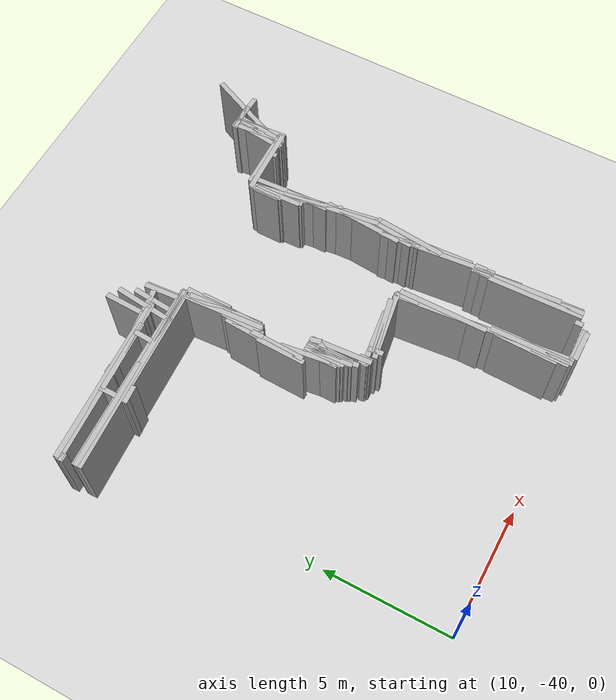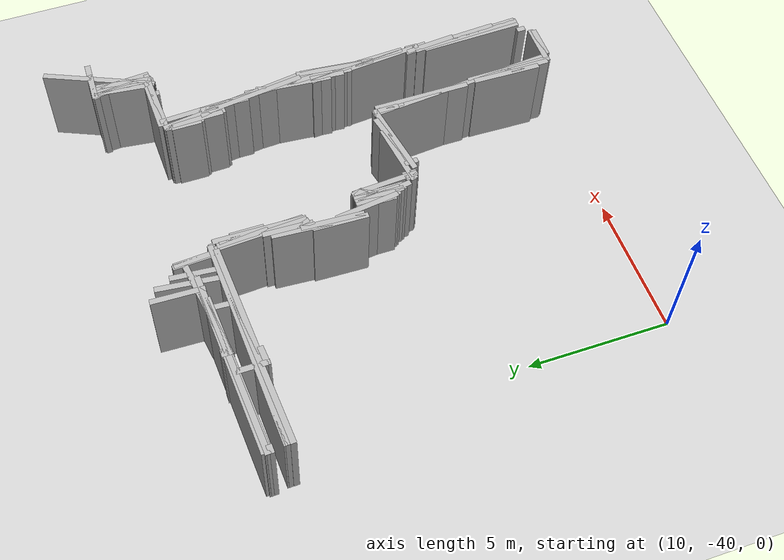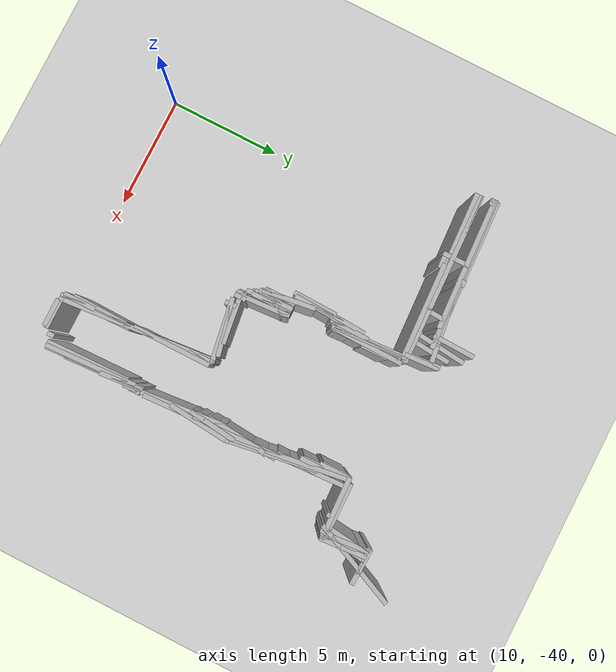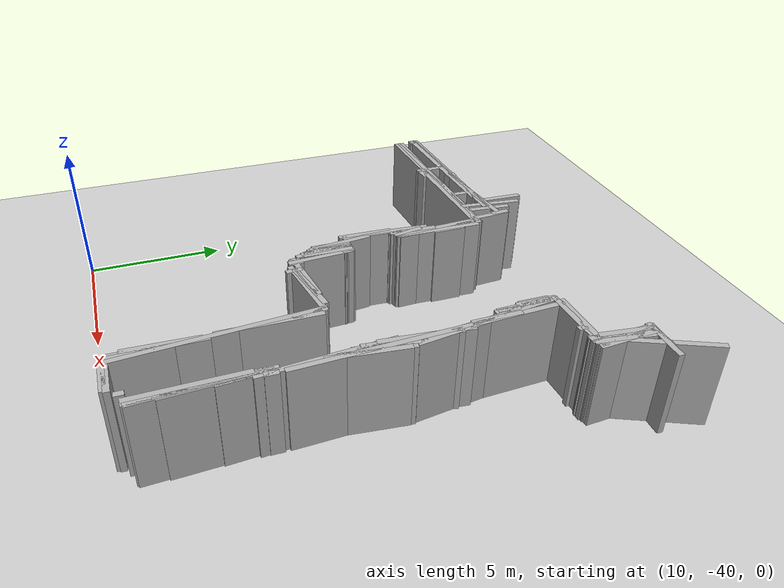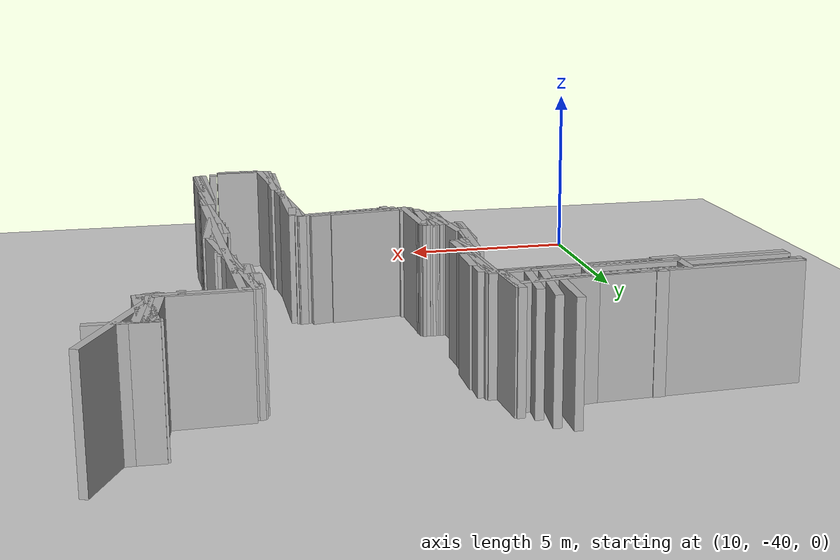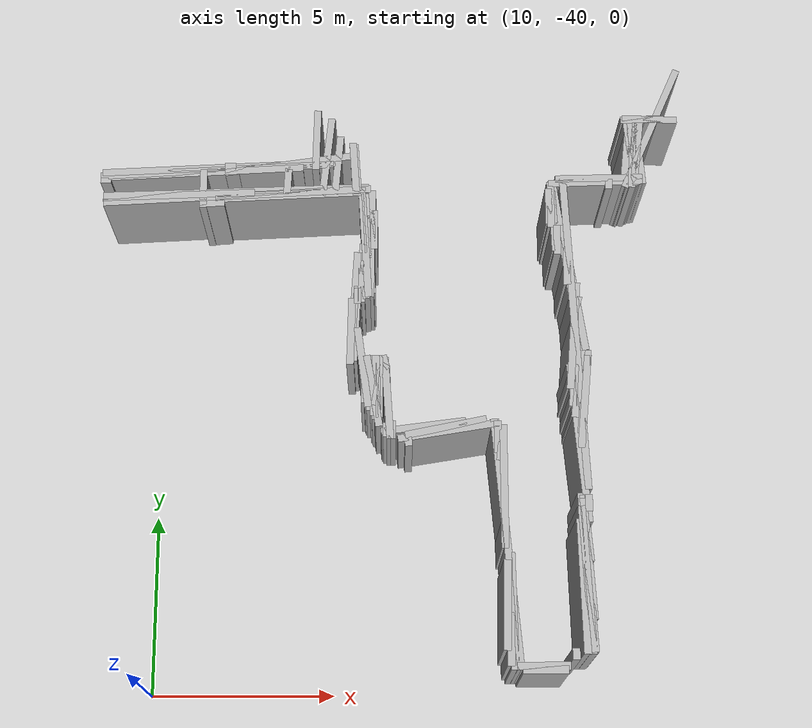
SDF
<sdf version="1.6">
 <world name="aboureyhan">
  <model name="ground_plane">
   <static>true</static>
   <link name="link">
    <collision name="collision">
     <geometry><plane><normal>0 0 1</normal><size>100 100</size></plane></geometry>
    </collision>
    <visual name="visual">
     <geometry><plane><normal>0 0 1</normal><size>500 500</size></plane></geometry>
     <material>
      <ambient>0.8 0.8 0.8 1</ambient>
      <diffuse>0.8 0.8 0.8 1</diffuse>
      <specular>0.8 0.8 0.8 1</specular>
     </material>
    </visual>
   </link>
  </model>
  <model name="wall_14">
   <static>true</static>
   <pose>16.1 -32.0 1.5 0 0 -1.515297821549179</pose>
   <link name="link">
    <collision name="collision"><geometry><box><size>1.802775637731999 0.2 3.0</size></box></geometry></collision>
    <visual name="visual">
     <geometry><box><size>1.802775637731999 0.2 3.0</size></box></geometry>
     <material><ambient>0.5 0.5 0.5 1</ambient><diffuse>0.7 0.7 0.7 1</diffuse></material>
    </visual>
   </link>
  </model>
  <model name="wall_17">
   <static>true</static>
   <pose>21.625 -30.375 1.5 0 0 -1.5205593019355559</pose>
   <link name="link">
    <collision name="collision"><geometry><box><size>8.961305708433342 0.2 3.0</size></box></geometry></collision>
    <visual name="visual">
     <geometry><box><size>8.961305708433342 0.2 3.0</size></box></geometry>
     <material><ambient>0.5 0.5 0.5 1</ambient><diffuse>0.7 0.7 0.7 1</diffuse></material>
    </visual>
   </link>
  </model>
  <model name="wall_21">
   <static>true</static>
   <pose>15.850000000000001 -27.775000000000002 1.5 0 0 -1.5093353709121298</pose>
   <link name="link">
    <collision name="collision">
     <geometry><box><size>3.2561480310329873 0.2 3.0</size></box></geometry>
    </collision>
    <visual name="visual">
     <geometry><box><size>3.2561480310329873 0.2 3.0</size></box></geometry>
     <material><ambient>0.5 0.5 0.5 1</ambient><diffuse>0.7 0.7 0.7 1</diffuse></material>
    </visual>
   </link>
  </model>
  <model name="wall_24">
   <static>true</static>
   <pose>21.700000000000003 -32.45 1.5 0 0 -1.5707963267948966</pose>
   <link name="link">
    <collision name="collision"><geometry><box><size>0.5 0.2 3.0</size></box></geometry></collision>
    <visual name="visual">
     <geometry><box><size>0.5 0.2 3.0</size></box></geometry>
     <material><ambient>0.5 0.5 0.5 1</ambient><diffuse>0.7 0.7 0.7 1</diffuse></material>
    </visual>
   </link>
  </model>
  <model name="wall_32">
   <static>true</static>
   <pose>12.225000000000001 -26.275000000000002 1.5 0 0 0.03354445956167839</pose>
   <link name="link">
    <collision name="collision"><geometry><box><size>7.45419345066923 0.2 3.0</size></box></geometry></collision>
    <visual name="visual">
     <geometry><box><size>7.45419345066923 0.2 3.0</size></box></geometry>
     <material><ambient>0.5 0.5 0.5 1</ambient><diffuse>0.7 0.7 0.7 1</diffuse></material>
    </visual>
   </link>
  </model>
  <model name="wall_50">
   <static>true</static>
   <pose>21.400000000000002 -39.25 1.5 0 0 -1.5707963267948966</pose>
   <link name="link">
    <collision name="collision">
     <geometry><box><size>0.30000000000000426 0.2 3.0</size></box></geometry>
    </collision>
    <visual name="visual">
     <geometry><box><size>0.30000000000000426 0.2 3.0</size></box></geometry>
     <material><ambient>0.5 0.5 0.5 1</ambient><diffuse>0.7 0.7 0.7 1</diffuse></material>
    </visual>
   </link>
  </model>
  <model name="wall_54">
   <static>true</static>
   <pose>21.0 -26.725 1.5 0 0 -1.5707963267948966</pose>
   <link name="link">
    <collision name="collision">
     <geometry><box><size>1.0499999999999972 0.2 3.0</size></box></geometry>
    </collision>
    <visual name="visual">
     <geometry><box><size>1.0499999999999972 0.2 3.0</size></box></geometry>
     <material><ambient>0.5 0.5 0.5 1</ambient><diffuse>0.7 0.7 0.7 1</diffuse></material>
    </visual>
   </link>
  </model>
  <model name="wall_58">
   <static>true</static>
   <pose>15.975000000000001 -27.875000000000004 1.5 0 0 -1.5182132651839555</pose>
   <link name="link">
    <collision name="collision">
     <geometry><box><size>2.8539446385660683 0.2 3.0</size></box></geometry>
    </collision>
    <visual name="visual">
     <geometry><box><size>2.8539446385660683 0.2 3.0</size></box></geometry>
     <material><ambient>0.5 0.5 0.5 1</ambient><diffuse>0.7 0.7 0.7 1</diffuse></material>
    </visual>
   </link>
  </model>
  <model name="wall_78">
   <static>true</static>
   <pose>21.75 -37.275000000000006 1.5 0 0 -1.520206618025512</pose>
   <link name="link">
    <collision name="collision"><geometry><box><size>3.955060050113015 0.2 3.0</size></box></geometry></collision>
    <visual name="visual">
     <geometry><box><size>3.955060050113015 0.2 3.0</size></box></geometry>
     <material><ambient>0.5 0.5 0.5 1</ambient><diffuse>0.7 0.7 0.7 1</diffuse></material>
    </visual>
   </link>
  </model>
  <model name="wall_84">
   <static>true</static>
   <pose>19.650000000000002 -36.275000000000006 1.5 0 0 -1.4821404449274589</pose>
   <link name="link">
    <collision name="collision"><geometry><box><size>6.776614198845911 0.2 3.0</size></box></geometry></collision>
    <visual name="visual">
     <geometry><box><size>6.776614198845911 0.2 3.0</size></box></geometry>
     <material><ambient>0.5 0.5 0.5 1</ambient><diffuse>0.7 0.7 0.7 1</diffuse></material>
    </visual>
   </link>
  </model>
  <model name="wall_100">
   <static>true</static>
   <pose>12.25 -26.400000000000002 1.5 0 0 0.053282851559692174</pose>
   <link name="link">
    <collision name="collision"><geometry><box><size>7.51065909225016 0.2 3.0</size></box></geometry></collision>
    <visual name="visual">
     <geometry><box><size>7.51065909225016 0.2 3.0</size></box></geometry>
     <material><ambient>0.5 0.5 0.5 1</ambient><diffuse>0.7 0.7 0.7 1</diffuse></material>
    </visual>
   </link>
  </model>
  <model name="wall_115">
   <static>true</static>
   <pose>21.650000000000002 -37.45 1.5 0 0 -1.5430256902014752</pose>
   <link name="link">
    <collision name="collision">
     <geometry><box><size>3.6013886210738155 0.2 3.0</size></box></geometry>
    </collision>
    <visual name="visual">
     <geometry><box><size>3.6013886210738155 0.2 3.0</size></box></geometry>
     <material><ambient>0.5 0.5 0.5 1</ambient><diffuse>0.7 0.7 0.7 1</diffuse></material>
    </visual>
   </link>
  </model>
  <model name="wall_116">
   <static>true</static>
   <pose>11.725000000000001 -25.550000000000004 1.5 0 0 0.045769539795550325</pose>
   <link name="link">
    <collision name="collision"><geometry><box><size>6.556866629724902 0.2 3.0</size></box></geometry></collision>
    <visual name="visual">
     <geometry><box><size>6.556866629724902 0.2 3.0</size></box></geometry>
     <material><ambient>0.5 0.5 0.5 1</ambient><diffuse>0.7 0.7 0.7 1</diffuse></material>
    </visual>
   </link>
  </model>
  <model name="wall_149">
   <static>true</static>
   <pose>19.700000000000003 -38.85000000000001 1.5 0 0 1.5707963267948966</pose>
   <link name="link">
    <collision name="collision">
     <geometry><box><size>1.3999999999999986 0.2 3.0</size></box></geometry>
    </collision>
    <visual name="visual">
     <geometry><box><size>1.3999999999999986 0.2 3.0</size></box></geometry>
     <material><ambient>0.5 0.5 0.5 1</ambient><diffuse>0.7 0.7 0.7 1</diffuse></material>
    </visual>
   </link>
  </model>
  <model name="wall_150">
   <static>true</static>
   <pose>21.775000000000002 -37.075 1.5 0 0 -1.512040504079174</pose>
   <link name="link">
    <collision name="collision"><geometry><box><size>4.257346591481601 0.2 3.0</size></box></geometry></collision>
    <visual name="visual">
     <geometry><box><size>4.257346591481601 0.2 3.0</size></box></geometry>
     <material><ambient>0.5 0.5 0.5 1</ambient><diffuse>0.7 0.7 0.7 1</diffuse></material>
    </visual>
   </link>
  </model>
  <model name="wall_156">
   <static>true</static>
   <pose>23.575000000000003 -25.050000000000004 1.5 0 0 -1.4959364790841287</pose>
   <link name="link">
    <collision name="collision">
     <geometry><box><size>2.0056171120131583 0.2 3.0</size></box></geometry>
    </collision>
    <visual name="visual">
     <geometry><box><size>2.0056171120131583 0.2 3.0</size></box></geometry>
     <material><ambient>0.5 0.5 0.5 1</ambient><diffuse>0.7 0.7 0.7 1</diffuse></material>
    </visual>
   </link>
  </model>
  <model name="wall_159">
   <static>true</static>
   <pose>16.025 -27.825000000000003 1.5 0 0 1.5549246438031064</pose>
   <link name="link">
    <collision name="collision">
     <geometry><box><size>3.1503968004046747 0.2 3.0</size></box></geometry>
    </collision>
    <visual name="visual">
     <geometry><box><size>3.1503968004046747 0.2 3.0</size></box></geometry>
     <material><ambient>0.5 0.5 0.5 1</ambient><diffuse>0.7 0.7 0.7 1</diffuse></material>
    </visual>
   </link>
  </model>
  <model name="wall_166">
   <static>true</static>
   <pose>22.700000000000003 -26.050000000000004 1.5 0 0 -1.5707963267948966</pose>
   <link name="link">
    <collision name="collision">
     <geometry><box><size>0.3000000000000007 0.2 3.0</size></box></geometry>
    </collision>
    <visual name="visual">
     <geometry><box><size>0.3000000000000007 0.2 3.0</size></box></geometry>
     <material><ambient>0.5 0.5 0.5 1</ambient><diffuse>0.7 0.7 0.7 1</diffuse></material>
    </visual>
   </link>
  </model>
  <model name="wall_175">
   <static>true</static>
   <pose>21.650000000000002 -33.55 1.5 0 0 -1.4801364395941519</pose>
   <link name="link">
    <collision name="collision"><geometry><box><size>4.418144406874903 0.2 3.0</size></box></geometry></collision>
    <visual name="visual">
     <geometry><box><size>4.418144406874903 0.2 3.0</size></box></geometry>
     <material><ambient>0.5 0.5 0.5 1</ambient><diffuse>0.7 0.7 0.7 1</diffuse></material>
    </visual>
   </link>
  </model>
  <model name="wall_176">
   <static>true</static>
   <pose>16.475 -32.300000000000004 1.5 0 0 -1.5056711634605113</pose>
   <link name="link">
    <collision name="collision">
     <geometry><box><size>2.3048861143232227 0.2 3.0</size></box></geometry>
    </collision>
    <visual name="visual">
     <geometry><box><size>2.3048861143232227 0.2 3.0</size></box></geometry>
     <material><ambient>0.5 0.5 0.5 1</ambient><diffuse>0.7 0.7 0.7 1</diffuse></material>
    </visual>
   </link>
  </model>
  <model name="wall_228">
   <static>true</static>
   <pose>15.475000000000001 -30.400000000000002 1.5 0 0 1.5444866095419758</pose>
   <link name="link">
    <collision name="collision">
     <geometry><box><size>1.9006577808748197 0.2 3.0</size></box></geometry>
    </collision>
    <visual name="visual">
     <geometry><box><size>1.9006577808748197 0.2 3.0</size></box></geometry>
     <material><ambient>0.5 0.5 0.5 1</ambient><diffuse>0.7 0.7 0.7 1</diffuse></material>
    </visual>
   </link>
  </model>
  <model name="wall_278">
   <static>true</static>
   <pose>15.575000000000001 -29.325000000000003 1.5 0 0 1.5096481641455946</pose>
   <link name="link">
    <collision name="collision">
     <geometry><box><size>2.4545875417267182 0.2 3.0</size></box></geometry>
    </collision>
    <visual name="visual">
     <geometry><box><size>2.4545875417267182 0.2 3.0</size></box></geometry>
     <material><ambient>0.5 0.5 0.5 1</ambient><diffuse>0.7 0.7 0.7 1</diffuse></material>
    </visual>
   </link>
  </model>
  <model name="wall_297">
   <static>true</static>
   <pose>11.675 -25.625000000000004 1.5 0 0 0.053384343490735536</pose>
   <link name="link">
    <collision name="collision"><geometry><box><size>6.559344479443052 0.2 3.0</size></box></geometry></collision>
    <visual name="visual">
     <geometry><box><size>6.559344479443052 0.2 3.0</size></box></geometry>
     <material><ambient>0.5 0.5 0.5 1</ambient><diffuse>0.7 0.7 0.7 1</diffuse></material>
    </visual>
   </link>
  </model>
  <model name="wall_352">
   <static>true</static>
   <pose>15.800000000000002 -31.425000000000004 1.5 0 0 -1.4382447944982222</pose>
   <link name="link">
    <collision name="collision">
     <geometry><box><size>2.2699118925632336 0.2 3.0</size></box></geometry>
    </collision>
    <visual name="visual">
     <geometry><box><size>2.2699118925632336 0.2 3.0</size></box></geometry>
     <material><ambient>0.5 0.5 0.5 1</ambient><diffuse>0.7 0.7 0.7 1</diffuse></material>
    </visual>
   </link>
  </model>
  <model name="wall_365">
   <static>true</static>
   <pose>18.050000000000004 -33.125 1.5 0 0 0.20176234432028528</pose>
   <link name="link">
    <collision name="collision">
     <geometry><box><size>2.2455511572885607 0.2 3.0</size></box></geometry>
    </collision>
    <visual name="visual">
     <geometry><box><size>2.2455511572885607 0.2 3.0</size></box></geometry>
     <material><ambient>0.5 0.5 0.5 1</ambient><diffuse>0.7 0.7 0.7 1</diffuse></material>
    </visual>
   </link>
  </model>
  <model name="wall_372">
   <static>true</static>
   <pose>11.3 -26.175 1.5 0 0 -1.5707963267948966</pose>
   <link name="link">
    <collision name="collision">
     <geometry><box><size>1.1499999999999986 0.2 3.0</size></box></geometry>
    </collision>
    <visual name="visual">
     <geometry><box><size>1.1499999999999986 0.2 3.0</size></box></geometry>
     <material><ambient>0.5 0.5 0.5 1</ambient><diffuse>0.7 0.7 0.7 1</diffuse></material>
    </visual>
   </link>
  </model>
  <model name="wall_375">
   <static>true</static>
   <pose>21.85 -35.225 1.5 0 0 -1.5707963267948966</pose>
   <link name="link">
    <collision name="collision">
     <geometry><box><size>0.45000000000000284 0.2 3.0</size></box></geometry>
    </collision>
    <visual name="visual">
     <geometry><box><size>0.45000000000000284 0.2 3.0</size></box></geometry>
     <material><ambient>0.5 0.5 0.5 1</ambient><diffuse>0.7 0.7 0.7 1</diffuse></material>
    </visual>
   </link>
  </model>
  <model name="wall_380">
   <static>true</static>
   <pose>23.950000000000003 -24.35 1.5 0 0 1.152571997215668</pose>
   <link name="link">
    <collision name="collision">
     <geometry><box><size>3.9395431207184424 0.2 3.0</size></box></geometry>
    </collision>
    <visual name="visual">
     <geometry><box><size>3.9395431207184424 0.2 3.0</size></box></geometry>
     <material><ambient>0.5 0.5 0.5 1</ambient><diffuse>0.7 0.7 0.7 1</diffuse></material>
    </visual>
   </link>
  </model>
  <model name="wall_388">
   <static>true</static>
   <pose>15.55 -25.575000000000003 1.5 0 0 -1.506369487369342</pose>
   <link name="link">
    <collision name="collision">
     <geometry><box><size>1.5532224567009039 0.2 3.0</size></box></geometry>
    </collision>
    <visual name="visual">
     <geometry><box><size>1.5532224567009039 0.2 3.0</size></box></geometry>
     <material><ambient>0.5 0.5 0.5 1</ambient><diffuse>0.7 0.7 0.7 1</diffuse></material>
    </visual>
   </link>
  </model>
  <model name="wall_399">
   <static>true</static>
   <pose>15.900000000000002 -27.225 1.5 0 0 -1.5137155443886312</pose>
   <link name="link">
    <collision name="collision">
     <geometry><box><size>1.7528548142958105 0.2 3.0</size></box></geometry>
    </collision>
    <visual name="visual">
     <geometry><box><size>1.7528548142958105 0.2 3.0</size></box></geometry>
     <material><ambient>0.5 0.5 0.5 1</ambient><diffuse>0.7 0.7 0.7 1</diffuse></material>
    </visual>
   </link>
  </model>
  <model name="wall_420">
   <static>true</static>
   <pose>14.475000000000001 -24.700000000000003 1.5 0 0 1.5430256902014772</pose>
   <link name="link">
    <collision name="collision">
     <geometry><box><size>1.8006943105369075 0.2 3.0</size></box></geometry>
    </collision>
    <visual name="visual">
     <geometry><box><size>1.8006943105369075 0.2 3.0</size></box></geometry>
     <material><ambient>0.5 0.5 0.5 1</ambient><diffuse>0.7 0.7 0.7 1</diffuse></material>
    </visual>
   </link>
  </model>
  <model name="wall_427">
   <static>true</static>
   <pose>8.55 -25.900000000000002 1.5 0 0 0.0</pose>
   <link name="link">
    <collision name="collision">
     <geometry><box><size>0.29999999999999893 0.2 3.0</size></box></geometry>
    </collision>
    <visual name="visual">
     <geometry><box><size>0.29999999999999893 0.2 3.0</size></box></geometry>
     <material><ambient>0.5 0.5 0.5 1</ambient><diffuse>0.7 0.7 0.7 1</diffuse></material>
    </visual>
   </link>
  </model>
  <model name="wall_429">
   <static>true</static>
   <pose>18.125 -33.225 1.5 0 0 0.16219883346338337</pose>
   <link name="link">
    <collision name="collision"><geometry><box><size>2.786574958618555 0.2 3.0</size></box></geometry></collision>
    <visual name="visual">
     <geometry><box><size>2.786574958618555 0.2 3.0</size></box></geometry>
     <material><ambient>0.5 0.5 0.5 1</ambient><diffuse>0.7 0.7 0.7 1</diffuse></material>
    </visual>
   </link>
  </model>
  <model name="wall_430">
   <static>true</static>
   <pose>21.450000000000003 -28.500000000000004 1.5 0 0 -1.4343937223939494</pose>
   <link name="link">
    <collision name="collision"><geometry><box><size>5.147815070493501 0.2 3.0</size></box></geometry></collision>
    <visual name="visual">
     <geometry><box><size>5.147815070493501 0.2 3.0</size></box></geometry>
     <material><ambient>0.5 0.5 0.5 1</ambient><diffuse>0.7 0.7 0.7 1</diffuse></material>
    </visual>
   </link>
  </model>
  <model name="wall_431">
   <static>true</static>
   <pose>23.400000000000002 -25.1 1.5 0 0 1.5232132235179126</pose>
   <link name="link">
    <collision name="collision"><geometry><box><size>2.102379604162862 0.2 3.0</size></box></geometry></collision>
    <visual name="visual">
     <geometry><box><size>2.102379604162862 0.2 3.0</size></box></geometry>
     <material><ambient>0.5 0.5 0.5 1</ambient><diffuse>0.7 0.7 0.7 1</diffuse></material>
    </visual>
   </link>
  </model>
  <model name="wall_437">
   <static>true</static>
   <pose>21.05 -26.675 1.5 0 0 1.5707963267948966</pose>
   <link name="link">
    <collision name="collision">
     <geometry><box><size>1.3500000000000014 0.2 3.0</size></box></geometry>
    </collision>
    <visual name="visual">
     <geometry><box><size>1.3500000000000014 0.2 3.0</size></box></geometry>
     <material><ambient>0.5 0.5 0.5 1</ambient><diffuse>0.7 0.7 0.7 1</diffuse></material>
    </visual>
   </link>
  </model>
  <model name="wall_447">
   <static>true</static>
   <pose>16.150000000000002 -31.875000000000004 1.5 0 0 1.0516502125483744</pose>
   <link name="link">
    <collision name="collision">
     <geometry><box><size>1.2093386622447868 0.2 3.0</size></box></geometry>
    </collision>
    <visual name="visual">
     <geometry><box><size>1.2093386622447868 0.2 3.0</size></box></geometry>
     <material><ambient>0.5 0.5 0.5 1</ambient><diffuse>0.7 0.7 0.7 1</diffuse></material>
    </visual>
   </link>
  </model>
  <model name="wall_450">
   <static>true</static>
   <pose>19.775 -38.10000000000001 1.5 0 0 -1.55466869295126</pose>
   <link name="link">
    <collision name="collision"><geometry><box><size>3.1004031995855 0.2 3.0</size></box></geometry></collision>
    <visual name="visual">
     <geometry><box><size>3.1004031995855 0.2 3.0</size></box></geometry>
     <material><ambient>0.5 0.5 0.5 1</ambient><diffuse>0.7 0.7 0.7 1</diffuse></material>
    </visual>
   </link>
  </model>
  <model name="wall_456">
   <static>true</static>
   <pose>21.825000000000003 -32.400000000000006 1.5 0 0 1.4749371796848836</pose>
   <link name="link">
    <collision name="collision">
     <geometry><box><size>2.6119915773217968 0.2 3.0</size></box></geometry>
    </collision>
    <visual name="visual">
     <geometry><box><size>2.6119915773217968 0.2 3.0</size></box></geometry>
     <material><ambient>0.5 0.5 0.5 1</ambient><diffuse>0.7 0.7 0.7 1</diffuse></material>
    </visual>
   </link>
  </model>
  <model name="wall_466">
   <static>true</static>
   <pose>12.050000000000002 -25.5 1.5 0 0 0.0</pose>
   <link name="link">
    <collision name="collision">
     <geometry><box><size>0.3000000000000007 0.2 3.0</size></box></geometry>
    </collision>
    <visual name="visual">
     <geometry><box><size>0.3000000000000007 0.2 3.0</size></box></geometry>
     <material><ambient>0.5 0.5 0.5 1</ambient><diffuse>0.7 0.7 0.7 1</diffuse></material>
    </visual>
   </link>
  </model>
  <model name="wall_476">
   <static>true</static>
   <pose>21.825000000000003 -32.125 1.5 0 0 1.4648119688052967</pose>
   <link name="link">
    <collision name="collision">
     <geometry><box><size>2.3632604596192963 0.2 3.0</size></box></geometry>
    </collision>
    <visual name="visual">
     <geometry><box><size>2.3632604596192963 0.2 3.0</size></box></geometry>
     <material><ambient>0.5 0.5 0.5 1</ambient><diffuse>0.7 0.7 0.7 1</diffuse></material>
    </visual>
   </link>
  </model>
  <model name="wall_484">
   <static>true</static>
   <pose>22.425000000000004 -25.875 1.5 0 0 0.02040533068653838</pose>
   <link name="link">
    <collision name="collision">
     <geometry><box><size>2.4505101509685687 0.2 3.0</size></box></geometry>
    </collision>
    <visual name="visual">
     <geometry><box><size>2.4505101509685687 0.2 3.0</size></box></geometry>
     <material><ambient>0.5 0.5 0.5 1</ambient><diffuse>0.7 0.7 0.7 1</diffuse></material>
    </visual>
   </link>
  </model>
  <model name="wall_486">
   <static>true</static>
   <pose>11.25 -25.700000000000003 1.5 0 0 0.05258306161094121</pose>
   <link name="link">
    <collision name="collision"><geometry><box><size>5.707889277132135 0.2 3.0</size></box></geometry></collision>
    <visual name="visual">
     <geometry><box><size>5.707889277132135 0.2 3.0</size></box></geometry>
     <material><ambient>0.5 0.5 0.5 1</ambient><diffuse>0.7 0.7 0.7 1</diffuse></material>
    </visual>
   </link>
  </model>
  <model name="wall_488">
   <static>true</static>
   <pose>15.600000000000001 -30.175 1.5 0 0 1.524318195443893</pose>
   <link name="link">
    <collision name="collision">
     <geometry><box><size>2.1523243250030872 0.2 3.0</size></box></geometry>
    </collision>
    <visual name="visual">
     <geometry><box><size>2.1523243250030872 0.2 3.0</size></box></geometry>
     <material><ambient>0.5 0.5 0.5 1</ambient><diffuse>0.7 0.7 0.7 1</diffuse></material>
    </visual>
   </link>
  </model>
  <model name="wall_489">
   <static>true</static>
   <pose>15.075000000000001 -25.475 1.5 0 0 1.4852910331166909</pose>
   <link name="link">
    <collision name="collision"><geometry><box><size>1.75641680702503 0.2 3.0</size></box></geometry></collision>
    <visual name="visual">
     <geometry><box><size>1.75641680702503 0.2 3.0</size></box></geometry>
     <material><ambient>0.5 0.5 0.5 1</ambient><diffuse>0.7 0.7 0.7 1</diffuse></material>
    </visual>
   </link>
  </model>
  <model name="wall_490">
   <static>true</static>
   <pose>15.850000000000001 -31.775000000000002 1.5 0 0 -1.5707963267948966</pose>
   <link name="link">
    <collision name="collision">
     <geometry><box><size>1.3500000000000014 0.2 3.0</size></box></geometry>
    </collision>
    <visual name="visual">
     <geometry><box><size>1.3500000000000014 0.2 3.0</size></box></geometry>
     <material><ambient>0.5 0.5 0.5 1</ambient><diffuse>0.7 0.7 0.7 1</diffuse></material>
    </visual>
   </link>
  </model>
  <model name="wall_508">
   <static>true</static>
   <pose>22.325000000000003 -26.000000000000004 1.5 0 0 0.03771795246686472</pose>
   <link name="link">
    <collision name="collision"><geometry><box><size>2.651886121235226 0.2 3.0</size></box></geometry></collision>
    <visual name="visual">
     <geometry><box><size>2.651886121235226 0.2 3.0</size></box></geometry>
     <material><ambient>0.5 0.5 0.5 1</ambient><diffuse>0.7 0.7 0.7 1</diffuse></material>
    </visual>
   </link>
  </model>
  <model name="wall_533">
   <static>true</static>
   <pose>15.775 -28.700000000000003 1.5 0 0 1.5413930385908912</pose>
   <link name="link">
    <collision name="collision">
     <geometry><box><size>1.7007351351694977 0.2 3.0</size></box></geometry>
    </collision>
    <visual name="visual">
     <geometry><box><size>1.7007351351694977 0.2 3.0</size></box></geometry>
     <material><ambient>0.5 0.5 0.5 1</ambient><diffuse>0.7 0.7 0.7 1</diffuse></material>
    </visual>
   </link>
  </model>
  <model name="wall_536">
   <static>true</static>
   <pose>19.450000000000003 -33.400000000000006 1.5 0 0 1.5707963267948966</pose>
   <link name="link">
    <collision name="collision">
     <geometry><box><size>0.8999999999999986 0.2 3.0</size></box></geometry>
    </collision>
    <visual name="visual">
     <geometry><box><size>0.8999999999999986 0.2 3.0</size></box></geometry>
     <material><ambient>0.5 0.5 0.5 1</ambient><diffuse>0.7 0.7 0.7 1</diffuse></material>
    </visual>
   </link>
  </model>
  <model name="wall_538">
   <static>true</static>
   <pose>19.625 -37.95 1.5 0 0 1.5499660067586793</pose>
   <link name="link">
    <collision name="collision">
     <geometry><box><size>2.4005207768315664 0.2 3.0</size></box></geometry>
    </collision>
    <visual name="visual">
     <geometry><box><size>2.4005207768315664 0.2 3.0</size></box></geometry>
     <material><ambient>0.5 0.5 0.5 1</ambient><diffuse>0.7 0.7 0.7 1</diffuse></material>
    </visual>
   </link>
  </model>
  <model name="wall_541">
   <static>true</static>
   <pose>21.625 -29.125000000000004 1.5 0 0 -1.4212365869211931</pose>
   <link name="link">
    <collision name="collision">
     <geometry><box><size>3.6912057650583487 0.2 3.0</size></box></geometry>
    </collision>
    <visual name="visual">
     <geometry><box><size>3.6912057650583487 0.2 3.0</size></box></geometry>
     <material><ambient>0.5 0.5 0.5 1</ambient><diffuse>0.7 0.7 0.7 1</diffuse></material>
    </visual>
   </link>
  </model>
  <model name="wall_556">
   <static>true</static>
   <pose>23.525000000000002 -25.075000000000003 1.5 0 0 1.4494443262241328</pose>
   <link name="link">
    <collision name="collision">
     <geometry><box><size>2.0651876428063356 0.2 3.0</size></box></geometry>
    </collision>
    <visual name="visual">
     <geometry><box><size>2.0651876428063356 0.2 3.0</size></box></geometry>
     <material><ambient>0.5 0.5 0.5 1</ambient><diffuse>0.7 0.7 0.7 1</diffuse></material>
    </visual>
   </link>
  </model>
  <model name="wall_568">
   <static>true</static>
   <pose>15.600000000000001 -25.575000000000003 1.5 0 0 -1.501939837493851</pose>
   <link name="link">
    <collision name="collision"><geometry><box><size>1.453444185374866 0.2 3.0</size></box></geometry></collision>
    <visual name="visual">
     <geometry><box><size>1.453444185374866 0.2 3.0</size></box></geometry>
     <material><ambient>0.5 0.5 0.5 1</ambient><diffuse>0.7 0.7 0.7 1</diffuse></material>
    </visual>
   </link>
  </model>
  <model name="wall_579">
   <static>true</static>
   <pose>21.775000000000002 -35.900000000000006 1.5 0 0 -1.4876550949064564</pose>
   <link name="link">
    <collision name="collision">
     <geometry><box><size>1.8062391868188483 0.2 3.0</size></box></geometry>
    </collision>
    <visual name="visual">
     <geometry><box><size>1.8062391868188483 0.2 3.0</size></box></geometry>
     <material><ambient>0.5 0.5 0.5 1</ambient><diffuse>0.7 0.7 0.7 1</diffuse></material>
    </visual>
   </link>
  </model>
  <model name="wall_588">
   <static>true</static>
   <pose>19.55 -33.60000000000001 1.5 0 0 1.4601391056209991</pose>
   <link name="link">
    <collision name="collision">
     <geometry><box><size>0.9055385138137404 0.2 3.0</size></box></geometry>
    </collision>
    <visual name="visual">
     <geometry><box><size>0.9055385138137404 0.2 3.0</size></box></geometry>
     <material><ambient>0.5 0.5 0.5 1</ambient><diffuse>0.7 0.7 0.7 1</diffuse></material>
    </visual>
   </link>
  </model>
  <model name="wall_600">
   <static>true</static>
   <pose>16.075000000000003 -32.1 1.5 0 0 -1.3975506603425327</pose>
   <link name="link">
    <collision name="collision"><geometry><box><size>2.030394050424695 0.2 3.0</size></box></geometry></collision>
    <visual name="visual">
     <geometry><box><size>2.030394050424695 0.2 3.0</size></box></geometry>
     <material><ambient>0.5 0.5 0.5 1</ambient><diffuse>0.7 0.7 0.7 1</diffuse></material>
    </visual>
   </link>
  </model>
  <model name="wall_603">
   <static>true</static>
   <pose>20.6 -39.650000000000006 1.5 0 0 0.0</pose>
   <link name="link">
    <collision name="collision">
     <geometry><box><size>1.2000000000000028 0.2 3.0</size></box></geometry>
    </collision>
    <visual name="visual">
     <geometry><box><size>1.2000000000000028 0.2 3.0</size></box></geometry>
     <material><ambient>0.5 0.5 0.5 1</ambient><diffuse>0.7 0.7 0.7 1</diffuse></material>
    </visual>
   </link>
  </model>
  <model name="wall_606">
   <static>true</static>
   <pose>23.35 -25.075000000000003 1.5 0 0 -1.4735431285433294</pose>
   <link name="link">
    <collision name="collision">
     <geometry><box><size>2.0597329924045953 0.2 3.0</size></box></geometry>
    </collision>
    <visual name="visual">
     <geometry><box><size>2.0597329924045953 0.2 3.0</size></box></geometry>
     <material><ambient>0.5 0.5 0.5 1</ambient><diffuse>0.7 0.7 0.7 1</diffuse></material>
    </visual>
   </link>
  </model>
  <model name="wall_615">
   <static>true</static>
   <pose>16.6 -33.2 1.5 0 0 1.5707963267948966</pose>
   <link name="link">
    <collision name="collision"><geometry><box><size>0.5 0.2 3.0</size></box></geometry></collision>
    <visual name="visual">
     <geometry><box><size>0.5 0.2 3.0</size></box></geometry>
     <material><ambient>0.5 0.5 0.5 1</ambient><diffuse>0.7 0.7 0.7 1</diffuse></material>
    </visual>
   </link>
  </model>
  <model name="wall_635">
   <static>true</static>
   <pose>15.650000000000002 -29.375 1.5 0 0 -1.5707963267948966</pose>
   <link name="link">
    <collision name="collision">
     <geometry><box><size>0.4499999999999993 0.2 3.0</size></box></geometry>
    </collision>
    <visual name="visual">
     <geometry><box><size>0.4499999999999993 0.2 3.0</size></box></geometry>
     <material><ambient>0.5 0.5 0.5 1</ambient><diffuse>0.7 0.7 0.7 1</diffuse></material>
    </visual>
   </link>
  </model>
  <model name="wall_677">
   <static>true</static>
   <pose>21.700000000000003 -29.575000000000003 1.5 0 0 1.2924966677897893</pose>
   <link name="link">
    <collision name="collision">
     <geometry><box><size>0.3640054944640233 0.2 3.0</size></box></geometry>
    </collision>
    <visual name="visual">
     <geometry><box><size>0.3640054944640233 0.2 3.0</size></box></geometry>
     <material><ambient>0.5 0.5 0.5 1</ambient><diffuse>0.7 0.7 0.7 1</diffuse></material>
    </visual>
   </link>
  </model>
  <model name="wall_679">
   <static>true</static>
   <pose>17.025 -33.375 1.5 0 0 -1.480136439594151</pose>
   <link name="link">
    <collision name="collision">
     <geometry><box><size>0.5522680508593674 0.2 3.0</size></box></geometry>
    </collision>
    <visual name="visual">
     <geometry><box><size>0.5522680508593674 0.2 3.0</size></box></geometry>
     <material><ambient>0.5 0.5 0.5 1</ambient><diffuse>0.7 0.7 0.7 1</diffuse></material>
    </visual>
   </link>
  </model>
  <model name="wall_680">
   <static>true</static>
   <pose>21.55 -31.950000000000003 1.5 0 0 1.4876550949064544</pose>
   <link name="link">
    <collision name="collision">
     <geometry><box><size>1.2041594578792325 0.2 3.0</size></box></geometry>
    </collision>
    <visual name="visual">
     <geometry><box><size>1.2041594578792325 0.2 3.0</size></box></geometry>
     <material><ambient>0.5 0.5 0.5 1</ambient><diffuse>0.7 0.7 0.7 1</diffuse></material>
    </visual>
   </link>
  </model>
  <model name="wall_702">
   <static>true</static>
   <pose>21.450000000000003 -28.200000000000003 1.5 0 0 1.5707963267948966</pose>
   <link name="link">
    <collision name="collision">
     <geometry><box><size>1.7000000000000028 0.2 3.0</size></box></geometry>
    </collision>
    <visual name="visual">
     <geometry><box><size>1.7000000000000028 0.2 3.0</size></box></geometry>
     <material><ambient>0.5 0.5 0.5 1</ambient><diffuse>0.7 0.7 0.7 1</diffuse></material>
    </visual>
   </link>
  </model>
  <model name="wall_718">
   <static>true</static>
   <pose>14.775000000000002 -25.225 1.5 0 0 1.4648119688052967</pose>
   <link name="link">
    <collision name="collision">
     <geometry><box><size>2.3632604596192928 0.2 3.0</size></box></geometry>
    </collision>
    <visual name="visual">
     <geometry><box><size>2.3632604596192928 0.2 3.0</size></box></geometry>
     <material><ambient>0.5 0.5 0.5 1</ambient><diffuse>0.7 0.7 0.7 1</diffuse></material>
    </visual>
   </link>
  </model>
  <model name="wall_736">
   <static>true</static>
   <pose>21.675 -31.825000000000003 1.5 0 0 1.4494443262241328</pose>
   <link name="link">
    <collision name="collision">
     <geometry><box><size>2.0651876428063356 0.2 3.0</size></box></geometry>
    </collision>
    <visual name="visual">
     <geometry><box><size>2.0651876428063356 0.2 3.0</size></box></geometry>
     <material><ambient>0.5 0.5 0.5 1</ambient><diffuse>0.7 0.7 0.7 1</diffuse></material>
    </visual>
   </link>
  </model>
  <model name="wall_738">
   <static>true</static>
   <pose>13.675000000000002 -25.450000000000003 1.5 0 0 0.13992467057411773</pose>
   <link name="link">
    <collision name="collision"><geometry><box><size>3.585038354048671 0.2 3.0</size></box></geometry></collision>
    <visual name="visual">
     <geometry><box><size>3.585038354048671 0.2 3.0</size></box></geometry>
     <material><ambient>0.5 0.5 0.5 1</ambient><diffuse>0.7 0.7 0.7 1</diffuse></material>
    </visual>
   </link>
  </model>
  <model name="wall_751">
   <static>true</static>
   <pose>10.625 -26.375000000000004 1.5 0 0 0.03527947359359094</pose>
   <link name="link">
    <collision name="collision"><geometry><box><size>4.252646234992984 0.2 3.0</size></box></geometry></collision>
    <visual name="visual">
     <geometry><box><size>4.252646234992984 0.2 3.0</size></box></geometry>
     <material><ambient>0.5 0.5 0.5 1</ambient><diffuse>0.7 0.7 0.7 1</diffuse></material>
    </visual>
   </link>
  </model>
  <model name="wall_752">
   <static>true</static>
   <pose>20.55 -39.550000000000004 1.5 0 0 0.0</pose>
   <link name="link">
    <collision name="collision">
     <geometry><box><size>1.3999999999999986 0.2 3.0</size></box></geometry>
    </collision>
    <visual name="visual">
     <geometry><box><size>1.3999999999999986 0.2 3.0</size></box></geometry>
     <material><ambient>0.5 0.5 0.5 1</ambient><diffuse>0.7 0.7 0.7 1</diffuse></material>
    </visual>
   </link>
  </model>
  <model name="wall_753">
   <static>true</static>
   <pose>13.675000000000002 -25.925 1.5 0 0 1.5120405040791731</pose>
   <link name="link">
    <collision name="collision">
     <geometry><box><size>0.8514693182963214 0.2 3.0</size></box></geometry>
    </collision>
    <visual name="visual">
     <geometry><box><size>0.8514693182963214 0.2 3.0</size></box></geometry>
     <material><ambient>0.5 0.5 0.5 1</ambient><diffuse>0.7 0.7 0.7 1</diffuse></material>
    </visual>
   </link>
  </model>
  <model name="wall_759">
   <static>true</static>
   <pose>21.800000000000004 -36.725 1.5 0 0 -1.5093353709121309</pose>
   <link name="link">
    <collision name="collision">
     <geometry><box><size>3.2561480310329873 0.2 3.0</size></box></geometry>
    </collision>
    <visual name="visual">
     <geometry><box><size>3.2561480310329873 0.2 3.0</size></box></geometry>
     <material><ambient>0.5 0.5 0.5 1</ambient><diffuse>0.7 0.7 0.7 1</diffuse></material>
    </visual>
   </link>
  </model>
  <model name="wall_772">
   <static>true</static>
   <pose>16.125 -31.8 1.5 0 0 1.4640606541457593</pose>
   <link name="link">
    <collision name="collision">
     <geometry><box><size>1.4080127840328711 0.2 3.0</size></box></geometry>
    </collision>
    <visual name="visual">
     <geometry><box><size>1.4080127840328711 0.2 3.0</size></box></geometry>
     <material><ambient>0.5 0.5 0.5 1</ambient><diffuse>0.7 0.7 0.7 1</diffuse></material>
    </visual>
   </link>
  </model>
  <model name="wall_792">
   <static>true</static>
   <pose>23.225 -25.975 1.5 0 0 -1.4288992721907399</pose>
   <link name="link">
    <collision name="collision">
     <geometry><box><size>0.35355339059327123 0.2 3.0</size></box></geometry>
    </collision>
    <visual name="visual">
     <geometry><box><size>0.35355339059327123 0.2 3.0</size></box></geometry>
     <material><ambient>0.5 0.5 0.5 1</ambient><diffuse>0.7 0.7 0.7 1</diffuse></material>
    </visual>
   </link>
  </model>
  <model name="wall_802">
   <static>true</static>
   <pose>16.450000000000003 -33.2 1.5 0 0 1.5707963267948966</pose>
   <link name="link">
    <collision name="collision">
     <geometry><box><size>0.4000000000000057 0.2 3.0</size></box></geometry>
    </collision>
    <visual name="visual">
     <geometry><box><size>0.4000000000000057 0.2 3.0</size></box></geometry>
     <material><ambient>0.5 0.5 0.5 1</ambient><diffuse>0.7 0.7 0.7 1</diffuse></material>
    </visual>
   </link>
  </model>
  <model name="wall_815">
   <static>true</static>
   <pose>16.25 -31.975 1.5 0 0 -1.5707963267948966</pose>
   <link name="link">
    <collision name="collision"><geometry><box><size>1.75 0.2 3.0</size></box></geometry></collision>
    <visual name="visual">
     <geometry><box><size>1.75 0.2 3.0</size></box></geometry>
     <material><ambient>0.5 0.5 0.5 1</ambient><diffuse>0.7 0.7 0.7 1</diffuse></material>
    </visual>
   </link>
  </model>
  <model name="wall_819">
   <static>true</static>
   <pose>16.175000000000004 -31.900000000000002 1.5 0 0 -1.539556493364628</pose>
   <link name="link">
    <collision name="collision">
     <geometry><box><size>1.6007810593582135 0.2 3.0</size></box></geometry>
    </collision>
    <visual name="visual">
     <geometry><box><size>1.6007810593582135 0.2 3.0</size></box></geometry>
     <material><ambient>0.5 0.5 0.5 1</ambient><diffuse>0.7 0.7 0.7 1</diffuse></material>
    </visual>
   </link>
  </model>
  <model name="wall_824">
   <static>true</static>
   <pose>17.450000000000003 -33.1 1.5 0 0 0.12970253715591085</pose>
   <link name="link">
    <collision name="collision">
     <geometry><box><size>2.3194827009486407 0.2 3.0</size></box></geometry>
    </collision>
    <visual name="visual">
     <geometry><box><size>2.3194827009486407 0.2 3.0</size></box></geometry>
     <material><ambient>0.5 0.5 0.5 1</ambient><diffuse>0.7 0.7 0.7 1</diffuse></material>
    </visual>
   </link>
  </model>
  <model name="wall_838">
   <static>true</static>
   <pose>21.125 -27.150000000000002 1.5 0 0 -1.5430256902014752</pose>
   <link name="link">
    <collision name="collision">
     <geometry><box><size>1.8006943105369149 0.2 3.0</size></box></geometry>
    </collision>
    <visual name="visual">
     <geometry><box><size>1.8006943105369149 0.2 3.0</size></box></geometry>
     <material><ambient>0.5 0.5 0.5 1</ambient><diffuse>0.7 0.7 0.7 1</diffuse></material>
    </visual>
   </link>
  </model>
  <model name="wall_863">
   <static>true</static>
   <pose>21.575000000000003 -30.525000000000002 1.5 0 0 1.4890119461769007</pose>
   <link name="link">
    <collision name="collision">
     <geometry><box><size>3.0602287496198755 0.2 3.0</size></box></geometry>
    </collision>
    <visual name="visual">
     <geometry><box><size>3.0602287496198755 0.2 3.0</size></box></geometry>
     <material><ambient>0.5 0.5 0.5 1</ambient><diffuse>0.7 0.7 0.7 1</diffuse></material>
    </visual>
   </link>
  </model>
  <model name="wall_864">
   <static>true</static>
   <pose>16.0 -31.875000000000004 1.5 0 0 1.5707963267948966</pose>
   <link name="link">
    <collision name="collision">
     <geometry><box><size>1.5500000000000043 0.2 3.0</size></box></geometry>
    </collision>
    <visual name="visual">
     <geometry><box><size>1.5500000000000043 0.2 3.0</size></box></geometry>
     <material><ambient>0.5 0.5 0.5 1</ambient><diffuse>0.7 0.7 0.7 1</diffuse></material>
    </visual>
   </link>
  </model>
  <model name="wall_866">
   <static>true</static>
   <pose>16.1 -31.950000000000003 1.5 0 0 1.5707963267948966</pose>
   <link name="link">
    <collision name="collision">
     <geometry><box><size>1.7000000000000028 0.2 3.0</size></box></geometry>
    </collision>
    <visual name="visual">
     <geometry><box><size>1.7000000000000028 0.2 3.0</size></box></geometry>
     <material><ambient>0.5 0.5 0.5 1</ambient><diffuse>0.7 0.7 0.7 1</diffuse></material>
    </visual>
   </link>
  </model>
  <model name="wall_882">
   <static>true</static>
   <pose>23.925000000000004 -24.075000000000003 1.5 0 0 -0.032246882435252075</pose>
   <link name="link">
    <collision name="collision">
     <geometry><box><size>1.5508062419270827 0.2 3.0</size></box></geometry>
    </collision>
    <visual name="visual">
     <geometry><box><size>1.5508062419270827 0.2 3.0</size></box></geometry>
     <material><ambient>0.5 0.5 0.5 1</ambient><diffuse>0.7 0.7 0.7 1</diffuse></material>
    </visual>
   </link>
  </model>
  <model name="wall_898">
   <static>true</static>
   <pose>16.400000000000002 -31.3 1.5 0 0 -1.3258176636680283</pose>
   <link name="link">
    <collision name="collision"><geometry><box><size>0.412310562561765 0.2 3.0</size></box></geometry></collision>
    <visual name="visual">
     <geometry><box><size>0.412310562561765 0.2 3.0</size></box></geometry>
     <material><ambient>0.5 0.5 0.5 1</ambient><diffuse>0.7 0.7 0.7 1</diffuse></material>
    </visual>
   </link>
  </model>
  <model name="wall_918">
   <static>true</static>
   <pose>23.25 -24.925000000000004 1.5 0 0 1.457004319651189</pose>
   <link name="link">
    <collision name="collision">
     <geometry><box><size>1.7613914953808536 0.2 3.0</size></box></geometry>
    </collision>
    <visual name="visual">
     <geometry><box><size>1.7613914953808536 0.2 3.0</size></box></geometry>
     <material><ambient>0.5 0.5 0.5 1</ambient><diffuse>0.7 0.7 0.7 1</diffuse></material>
    </visual>
   </link>
  </model>
  <model name="wall_920">
   <static>true</static>
   <pose>21.200000000000003 -27.725 1.5 0 0 1.5707963267948966</pose>
   <link name="link">
    <collision name="collision">
     <geometry><box><size>0.8499999999999979 0.2 3.0</size></box></geometry>
    </collision>
    <visual name="visual">
     <geometry><box><size>0.8499999999999979 0.2 3.0</size></box></geometry>
     <material><ambient>0.5 0.5 0.5 1</ambient><diffuse>0.7 0.7 0.7 1</diffuse></material>
    </visual>
   </link>
  </model>
  <model name="wall_947">
   <static>true</static>
   <pose>19.6 -34.75 1.5 0 0 1.5707963267948966</pose>
   <link name="link">
    <collision name="collision">
     <geometry><box><size>3.3999999999999986 0.2 3.0</size></box></geometry>
    </collision>
    <visual name="visual">
     <geometry><box><size>3.3999999999999986 0.2 3.0</size></box></geometry>
     <material><ambient>0.5 0.5 0.5 1</ambient><diffuse>0.7 0.7 0.7 1</diffuse></material>
    </visual>
   </link>
  </model>
  <model name="wall_950">
   <static>true</static>
   <pose>11.55 -26.625 1.5 0 0 0.07130746478529104</pose>
   <link name="link">
    <collision name="collision">
     <geometry><box><size>0.7017834423809128 0.2 3.0</size></box></geometry>
    </collision>
    <visual name="visual">
     <geometry><box><size>0.7017834423809128 0.2 3.0</size></box></geometry>
     <material><ambient>0.5 0.5 0.5 1</ambient><diffuse>0.7 0.7 0.7 1</diffuse></material>
    </visual>
   </link>
  </model>
  <model name="wall_959">
   <static>true</static>
   <pose>13.700000000000001 -26.400000000000002 1.5 0 0 0.04874185130993058</pose>
   <link name="link">
    <collision name="collision"><geometry><box><size>4.104875150354756 0.2 3.0</size></box></geometry></collision>
    <visual name="visual">
     <geometry><box><size>4.104875150354756 0.2 3.0</size></box></geometry>
     <material><ambient>0.5 0.5 0.5 1</ambient><diffuse>0.7 0.7 0.7 1</diffuse></material>
    </visual>
   </link>
  </model>
  <model name="wall_960">
   <static>true</static>
   <pose>23.675 -24.075000000000003 1.5 0 0 0.04345089539152843</pose>
   <link name="link">
    <collision name="collision">
     <geometry><box><size>1.1510864433221322 0.2 3.0</size></box></geometry>
    </collision>
    <visual name="visual">
     <geometry><box><size>1.1510864433221322 0.2 3.0</size></box></geometry>
     <material><ambient>0.5 0.5 0.5 1</ambient><diffuse>0.7 0.7 0.7 1</diffuse></material>
    </visual>
   </link>
  </model>
  <model name="wall_975">
   <static>true</static>
   <pose>16.1 -27.425 1.5 0 0 1.5707963267948966</pose>
   <link name="link">
    <collision name="collision">
     <geometry><box><size>1.1499999999999986 0.2 3.0</size></box></geometry>
    </collision>
    <visual name="visual">
     <geometry><box><size>1.1499999999999986 0.2 3.0</size></box></geometry>
     <material><ambient>0.5 0.5 0.5 1</ambient><diffuse>0.7 0.7 0.7 1</diffuse></material>
    </visual>
   </link>
  </model>
  <model name="wall_996">
   <static>true</static>
   <pose>15.800000000000002 -28.900000000000002 1.5 0 0 -1.3909428270024191</pose>
   <link name="link">
    <collision name="collision">
     <geometry><box><size>1.1180339887498962 0.2 3.0</size></box></geometry>
    </collision>
    <visual name="visual">
     <geometry><box><size>1.1180339887498962 0.2 3.0</size></box></geometry>
     <material><ambient>0.5 0.5 0.5 1</ambient><diffuse>0.7 0.7 0.7 1</diffuse></material>
    </visual>
   </link>
  </model>
 </world>
</sdf>
